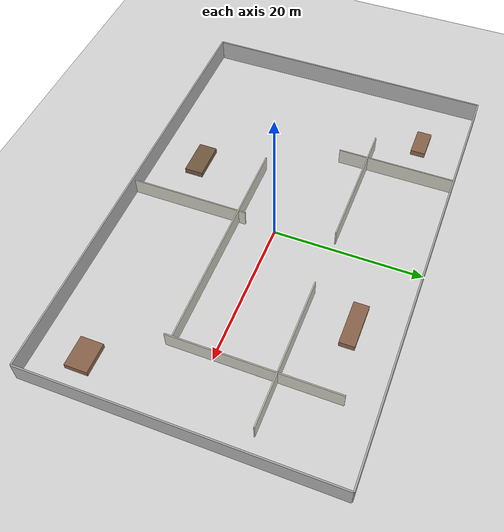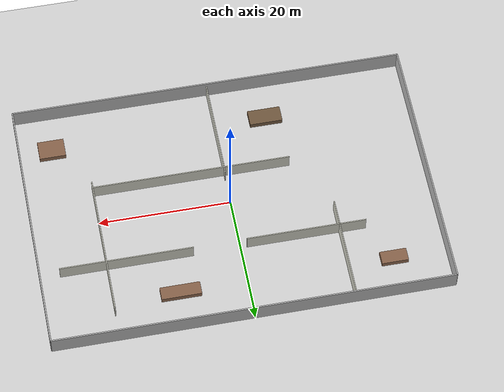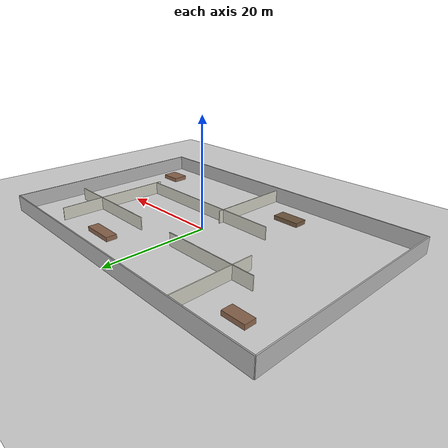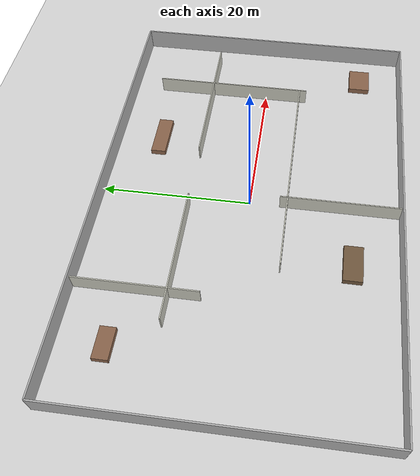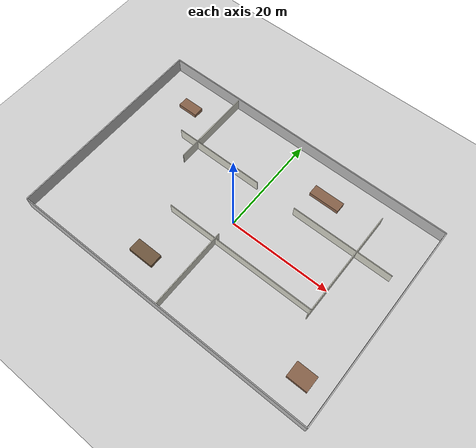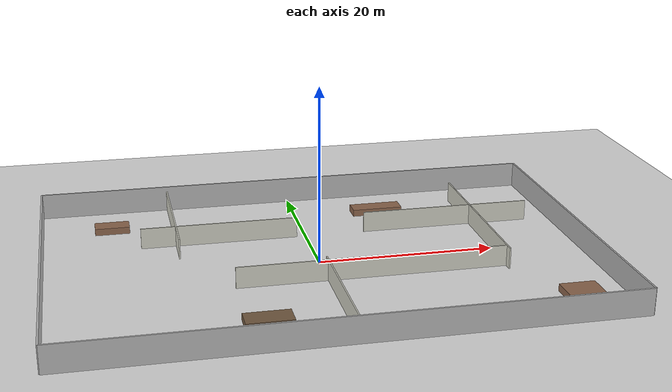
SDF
<?xml version="1.0"?>
<sdf version="1.8">
  <world name="large_office">

    <physics name="default" type="ode">
      <max_step_size>0.004</max_step_size>
      <real_time_factor>1.0</real_time_factor>
    </physics>

    <plugin name="gz::sim::systems::Physics"    filename="gz-sim-physics-system"/>
    <plugin name="gz::sim::systems::UserCommands" filename="gz-sim-user-commands-system"/>
    <plugin name="gz::sim::systems::SceneBroadcaster" filename="gz-sim-scene-broadcaster-system"/>
    <plugin name="gz::sim::systems::Sensors"    filename="gz-sim-sensors-system">
      <render_engine>ogre2</render_engine>
    </plugin>

    <light name="sun" type="directional">
      <cast_shadows>true</cast_shadows>
      <pose>0 0 15 0 0 0</pose>
      <diffuse>0.9 0.9 0.9 1</diffuse>
      <specular>0.1 0.1 0.1 1</specular>
      <direction>-0.3 0.1 -0.95</direction>
    </light>

    <!-- Ground -->
    <model name="ground_plane">
      <static>true</static>
      <link name="link">
        <collision name="collision">
          <geometry><plane><normal>0 0 1</normal><size>100 100</size></plane></geometry>
        </collision>
        <visual name="visual">
          <geometry><plane><normal>0 0 1</normal><size>100 100</size></plane></geometry>
          <material><ambient>0.85 0.85 0.85 1</ambient></material>
        </visual>
      </link>
    </model>

    <!-- Outer walls (60 × 40 m large office floor) -->
    <model name="wall_n"><static>true</static><pose>0 20 1.5 0 0 0</pose>
      <link name="l"><collision name="c"><geometry><box><size>60 0.2 3</size></box></geometry></collision>
      <visual name="v"><geometry><box><size>60 0.2 3</size></box></geometry>
        <material><ambient>0.7 0.7 0.7 1</ambient></material></visual></link></model>

    <model name="wall_s"><static>true</static><pose>0 -20 1.5 0 0 0</pose>
      <link name="l"><collision name="c"><geometry><box><size>60 0.2 3</size></box></geometry></collision>
      <visual name="v"><geometry><box><size>60 0.2 3</size></box></geometry>
        <material><ambient>0.7 0.7 0.7 1</ambient></material></visual></link></model>

    <model name="wall_e"><static>true</static><pose>30 0 1.5 0 0 0</pose>
      <link name="l"><collision name="c"><geometry><box><size>0.2 40 3</size></box></geometry></collision>
      <visual name="v"><geometry><box><size>0.2 40 3</size></box></geometry>
        <material><ambient>0.7 0.7 0.7 1</ambient></material></visual></link></model>

    <model name="wall_w"><static>true</static><pose>-30 0 1.5 0 0 0</pose>
      <link name="l"><collision name="c"><geometry><box><size>0.2 40 3</size></box></geometry></collision>
      <visual name="v"><geometry><box><size>0.2 40 3</size></box></geometry>
        <material><ambient>0.7 0.7 0.7 1</ambient></material></visual></link></model>

    <!-- Interior office partitions — creates corridors and rooms -->
    <!-- Horizontal partition A (with gap for corridor) -->
    <model name="partition_a1"><static>true</static><pose>-10 8 1.2 0 0 0</pose>
      <link name="l"><collision name="c"><geometry><box><size>18 0.15 2.4</size></box></geometry></collision>
      <visual name="v"><geometry><box><size>18 0.15 2.4</size></box></geometry>
        <material><ambient>0.8 0.8 0.75 1</ambient></material></visual></link></model>

    <model name="partition_a2"><static>true</static><pose>17 8 1.2 0 0 0</pose>
      <link name="l"><collision name="c"><geometry><box><size>20 0.15 2.4</size></box></geometry></collision>
      <visual name="v"><geometry><box><size>20 0.15 2.4</size></box></geometry>
        <material><ambient>0.8 0.8 0.75 1</ambient></material></visual></link></model>

    <!-- Horizontal partition B -->
    <model name="partition_b"><static>true</static><pose>5 -5 1.2 0 0 0</pose>
      <link name="l"><collision name="c"><geometry><box><size>30 0.15 2.4</size></box></geometry></collision>
      <visual name="v"><geometry><box><size>30 0.15 2.4</size></box></geometry>
        <material><ambient>0.8 0.8 0.75 1</ambient></material></visual></link></model>

    <!-- Vertical partitions -->
    <model name="partition_v1"><static>true</static><pose>-15 12 1.2 0 0 0</pose>
      <link name="l"><collision name="c"><geometry><box><size>0.15 16 2.4</size></box></geometry></collision>
      <visual name="v"><geometry><box><size>0.15 16 2.4</size></box></geometry>
        <material><ambient>0.8 0.8 0.75 1</ambient></material></visual></link></model>

    <model name="partition_v2"><static>true</static><pose>0 -12 1.2 0 0 0</pose>
      <link name="l"><collision name="c"><geometry><box><size>0.15 16 2.4</size></box></geometry></collision>
      <visual name="v"><geometry><box><size>0.15 16 2.4</size></box></geometry>
        <material><ambient>0.8 0.8 0.75 1</ambient></material></visual></link></model>

    <model name="partition_v3"><static>true</static><pose>20 5 1.2 0 0 0</pose>
      <link name="l"><collision name="c"><geometry><box><size>0.15 22 2.4</size></box></geometry></collision>
      <visual name="v"><geometry><box><size>0.15 22 2.4</size></box></geometry>
        <material><ambient>0.8 0.8 0.75 1</ambient></material></visual></link></model>

    <!-- Desk clusters (static obstacles) -->
    <model name="desk_cluster_a"><static>true</static><pose>-22 14 0.4 0 0 0</pose>
      <link name="l"><collision name="c"><geometry><box><size>4 2 0.8</size></box></geometry></collision>
      <visual name="v"><geometry><box><size>4 2 0.8</size></box></geometry>
        <material><ambient>0.55 0.4 0.3 1</ambient></material></visual></link></model>

    <model name="desk_cluster_b"><static>true</static><pose>10 14 0.4 0 0 0</pose>
      <link name="l"><collision name="c"><geometry><box><size>6 2 0.8</size></box></geometry></collision>
      <visual name="v"><geometry><box><size>6 2 0.8</size></box></geometry>
        <material><ambient>0.55 0.4 0.3 1</ambient></material></visual></link></model>

    <model name="desk_cluster_c"><static>true</static><pose>25 -14 0.4 0 0 0</pose>
      <link name="l"><collision name="c"><geometry><box><size>4 3 0.8</size></box></geometry></collision>
      <visual name="v"><geometry><box><size>4 3 0.8</size></box></geometry>
        <material><ambient>0.55 0.4 0.3 1</ambient></material></visual></link></model>

    <!-- Meeting room table -->
    <model name="meeting_table"><static>true</static><pose>-8 -14 0.4 0 0 0</pose>
      <link name="l"><collision name="c"><geometry><box><size>5 2.5 0.8</size></box></geometry></collision>
      <visual name="v"><geometry><box><size>5 2.5 0.8</size></box></geometry>
        <material><ambient>0.45 0.35 0.25 1</ambient></material></visual></link></model>

  </world>
</sdf>
